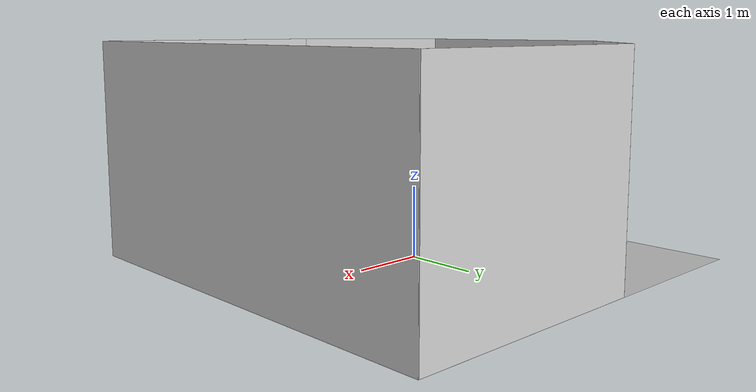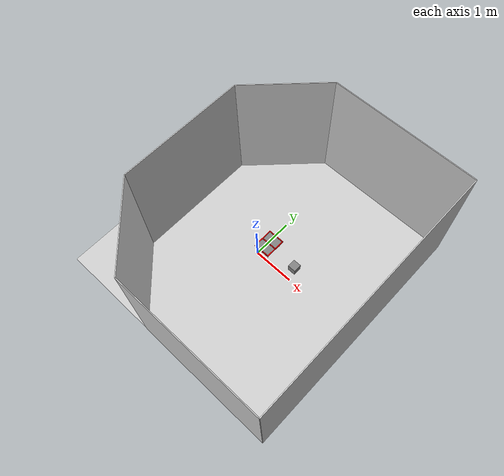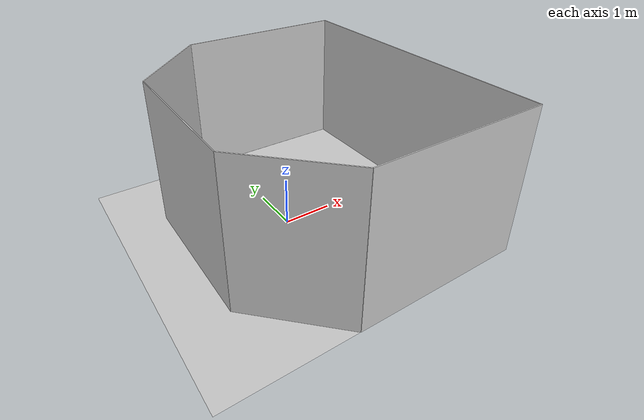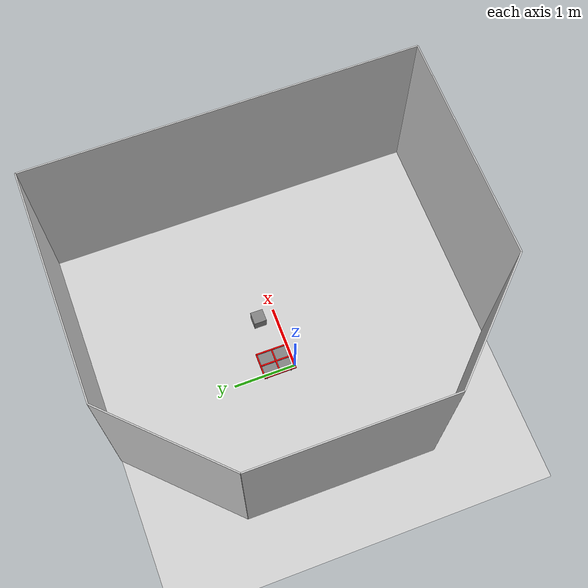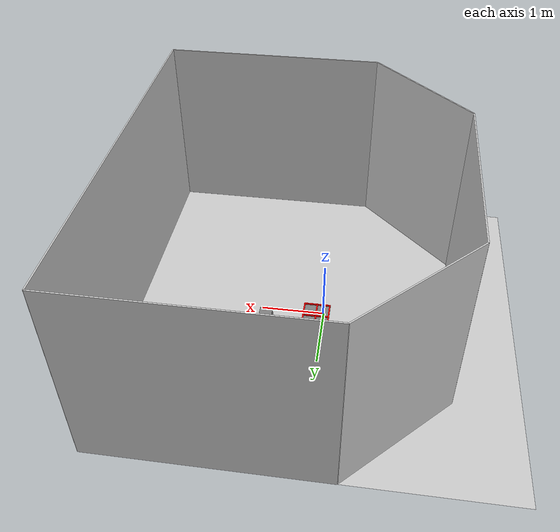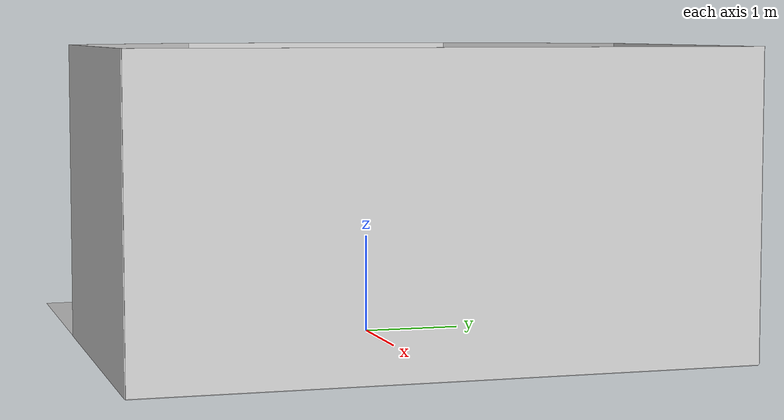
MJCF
<mujoco model="table_bin">
  <visual>
    <headlight diffuse="0.3 0.3 0.3" ambient="0.2 0.2 0.2" specular="0 0 0"/>
  </visual>
  <asset>
    <texture builtin="gradient" height="256" rgb1=".9 .9 1." rgb2=".2 .3 .4" type="skybox"
      width="256" />
    <texture file="../textures/light-gray-floor-tile.png" type="2d" name="texplane" />
    <material name="floorplane" reflectance="0.01" shininess="0.0" specular="0.0" texrepeat="2 2"
      texture="texplane" texuniform="true" />
    <!-- steel legs -->
    <texture file="../textures/steel-brushed.png" type="cube" name="tex-steel-brushed" />
    <material name="table_legs_metal" reflectance="0.8" shininess="0.8" texrepeat="1 1"
      texture="tex-steel-brushed" />
    <!-- plaster walls -->
    <texture file="../textures/light-gray-plaster.png" type="2d" name="tex-light-gray-plaster" />
    <material name="walls_mat" reflectance="0.0" shininess="0.1" specular="0.1" texrepeat="3 3"
      texture="tex-light-gray-plaster" texuniform="true" />
    <!-- bins -->
    <texture file="../textures/light-wood.png" type="2d" name="tex-light-wood" />
    <texture file="../textures/dark-wood.png" type="2d" name="tex-dark-wood" />
    <material name="light-wood" reflectance="0" texrepeat="15 15" texture="tex-light-wood"
      texuniform="true" />
    <material name="dark-wood" reflectance="0" texrepeat="5 5" texture="tex-dark-wood"
      texuniform="true" />

    <!-- bin textures -->

    <texture file="../textures/yellow-plaster.png" type="2d" name="texture_1" />
    <material name="material_1" reflectance="0" texrepeat="15 15" texture="texture_1"
      texuniform="true" />
    <texture file="../textures/brass-ambra.png" type="2d" name="texture_2" />
    <material name="material_2" reflectance="0" texrepeat="15 15" texture="texture_2"
      texuniform="true" />
    <texture file="../textures/metal.png" type="2d" name="texture_3" />
    <material name="material_3" reflectance="0" texrepeat="15 15" texture="texture_3"
      texuniform="true" />
    <texture file="../textures/wood-varnished-panels.png" type="2d" name="texture_4" />
    <material name="material_4" reflectance="0" texrepeat="15 15" texture="texture_4"
      texuniform="true" />

  </asset>
  <worldbody>
    <light name="spotlight_1" mode="targetbody" pos="0 0 3" dir="0 0 -1" cutoff="50.0" exponent="20" diffuse="0.2 0.2 0.2"/>

    <geom condim="3" group="1" material="floorplane" name="floor" pos="0 0 0" size="3 3 .125"
      type="plane" />
    <!-- Walls (visual only) -->
    <geom pos="-1.25 2.25 1.5" quat="0.6532815 0.6532815 0.2705981 0.2705981" size="1.06 1.5 0.01"
      type="box" conaffinity="0" contype="0" group="1" name="wall_leftcorner_visual"
      material="walls_mat" />
    <geom pos="-1.25 -2.25 1.5" quat="0.6532815 0.6532815 -0.2705981 -0.2705981"
      size="1.06 1.5 0.01" type="box" conaffinity="0" contype="0" group="1"
      name="wall_rightcorner_visual" material="walls_mat" />
    <geom pos="1.25 3 1.5" quat="0.7071 0.7071 0 0" size="1.75 1.5 0.01" type="box" conaffinity="0"
      contype="0" group="1" name="wall_left_visual" material="walls_mat" />
    <geom pos="1.25 -3 1.5" quat="0.7071 -0.7071 0 0" size="1.75 1.5 0.01" type="box"
      conaffinity="0" contype="0" group="1" name="wall_right_visual" material="walls_mat" />
    <geom pos="-2 0 1.5" quat="0.5 0.5 0.5 0.5" size="1.5 1.5 0.01" type="box" conaffinity="0"
      contype="0" group="1" name="wall_rear_visual" material="walls_mat" />
    <geom pos="3 0 1.5" quat="0.5 0.5 -0.5 -0.5" size="3 1.5 0.01" type="box" conaffinity="0"
      contype="0" group="1" name="wall_front_visual" material="walls_mat" />

    <body name="robot_support" pos="0.9 0.28 0.0">
      <geom pos="0 0 0.1" size="0.1 0.1 0.1" type="box" group="0" friction="1 0.005 0.0001" />
      <geom pos="0 0 0.1" material="floorplane" size="0.1 0.1 0.1" type="box" conaffinity="0"
        contype="0" group="1" />
    </body>

    <!-- bins -->
    <body name="bin2" pos="0.1 0.28 0.2">
      <geom pos="0 0 0" size="0.2 0.25 0.02" type="box" group="0" friction="1 0.005 0.0001" />
      <geom pos="0 0 0" size="0.2 0.25 0.02" type="box" conaffinity="0" contype="0" group="1"
        material="dark-wood" />
      <!-- different bin colors -->
      <geom name="bin_0_material" pos="-0.1 0.125 0.02002" size="0.1 0.125 0.0002" type="box"
        rgba="0 0 0 0" />
      <geom name="bin_1_material" pos="-0.1 -0.125 0.02002" size="0.1 0.125 0.0002" type="box"
        rgba="0 0 0 0" />
      <geom name="bin_2_material" pos="0.1 -0.125 0.02002" size="0.1 0.125 0.0002" type="box"
        rgba="0 0 0 0" />
      <geom name="bin_3_material" pos="0.1 0.125 0.02002" size="0.1 0.125 0.0002" type="box"
        rgba="0 0 0 0" />

      <geom pos="0 0.25 0.02" size="0.21 0.01 0.02" type="box" group="0" friction="1 0.005 0.0001"
        rgba="1 0 0 1" />
      <geom pos="0 0.25 0.02" size="0.21 0.01 0.02" type="box" conaffinity="0" contype="0" group="1"
        material="dark-wood" />
      <geom pos="0 0 0.02" size="0.2 0.01 0.02" type="box" group="0" friction="1 0.005 0.0001"
        rgba="1 0 0 1" />
      <geom pos="0 0 0.02" size="0.2 0.01 0.02" type="box" conaffinity="0" contype="0" group="1"
        material="dark-wood" />
      <geom pos="0 -0.25 0.02" size="0.21 0.01 0.02" type="box" group="0" friction="1 0.005 0.0001"
        rgba="1 0 0 1" />
      <geom pos="0 -0.25 0.02" size="0.21 0.01 0.02" type="box" conaffinity="0" contype="0"
        group="1" material="dark-wood" />
      <geom pos="0.2 0 0.02" size="0.01 0.25 0.02" type="box" group="0" friction="1 0.005 0.0001"
        rgba="1 0 0 1" />
      <geom pos="0.2 0 0.02" size="0.01 0.25 0.02" type="box" conaffinity="0" contype="0" group="1"
        material="dark-wood" />
      <geom pos="0 0 0.02" size="0.01 0.25 0.02" type="box" group="0" friction="1 0.005 0.0001"
        rgba="1 0 0 1" />
      <geom pos="0 0 0.02" size="0.01 0.25 0.02" type="box" conaffinity="0" contype="0" group="1"
        material="dark-wood" />
      <geom pos="-0.2 0 0.02" size="0.01 0.25 0.02" type="box" group="0" friction="1 0.005 0.0001"
        rgba="1 0 0 1" />
      <geom pos="-0.2 0 0.02" size="0.01 0.25 0.02" type="box" conaffinity="0" contype="0" group="1"
        material="dark-wood" />
      <!-- Legs (visual only) -->
      <geom pos="0.15 0.2 -0.1" size="0.01 0.1" type="cylinder" conaffinity="0" contype="0"
        group="1" name="bin2_leg1_visual" material="table_legs_metal" />
      <geom pos="-0.15 0.2 -0.1" size="0.01 0.1" type="cylinder" conaffinity="0" contype="0"
        group="1" name="bin2_leg2_visual" material="table_legs_metal" />
      <geom pos="-0.15 -0.2 -0.1" size="0.01 0.1" type="cylinder" conaffinity="0" contype="0"
        group="1" name="bin2_leg3_visual" material="table_legs_metal" />
      <geom pos="0.15 -0.2 -0.1" size="0.01 0.1" type="cylinder" conaffinity="0" contype="0"
        group="1" name="bin2_leg4_visual" material="table_legs_metal" />
    </body>

    <!-- Uniform lighting from multiple directions -->
    <light diffuse="1.0 1.0 1.0" pos="0 0 3" castshadow="false" />
    <light diffuse="1.0 1.0 1.0" pos="3 0 3" castshadow="false" />
    <light diffuse="1.0 1.0 1.0" pos="-3 0 3" castshadow="false" />
    <light diffuse="1.0 1.0 1.0" pos="0 3 3" castshadow="false" />
    <light diffuse="1.0 1.0 1.0" pos="0 -3 3" castshadow="false" />
    <!-- front view -->
    <camera mode="fixed" name="frontview" pos="1.6 0 1.45" quat="0.56 0.43 0.43 0.56" />

    <camera mode="fixed" name="third_person_camera" pos="-0.151 0.280 0.754"
      xyaxes="-0.004 -1.000 0.000 0.926 -0.004 0.377" />

    <!-- bird view -->
    <camera mode="fixed" name="birdview" pos="0.2 0 1.5" quat="0.7071 0 0 0.7071" />
    <!-- agent view -->
    <camera mode="fixed" name="agentview" pos="1.0 0 1.75" quat="0.653 0.271 0.271 0.653" />
    <!-- side view -->
    <camera mode="fixed" name="visualization_camera" pos="-0.241 1.307 1.054" xyaxes="-0.879 -0.478 -0.000 0.240 -0.442 0.864"/>

  </worldbody>
</mujoco>
